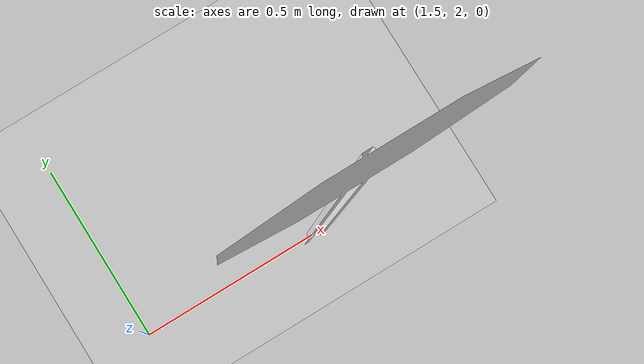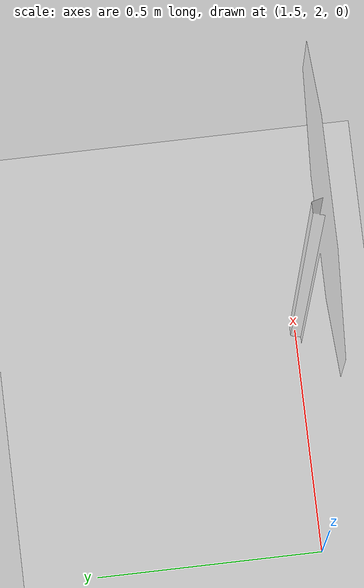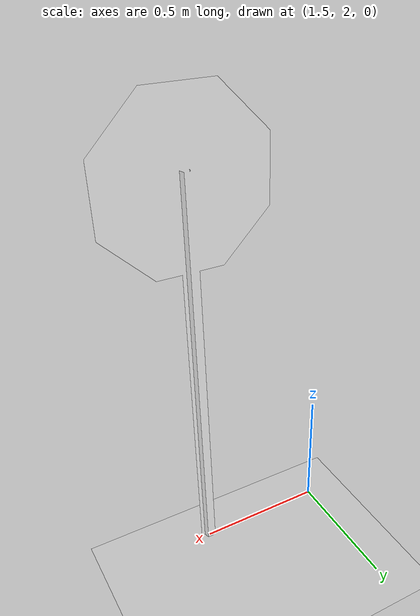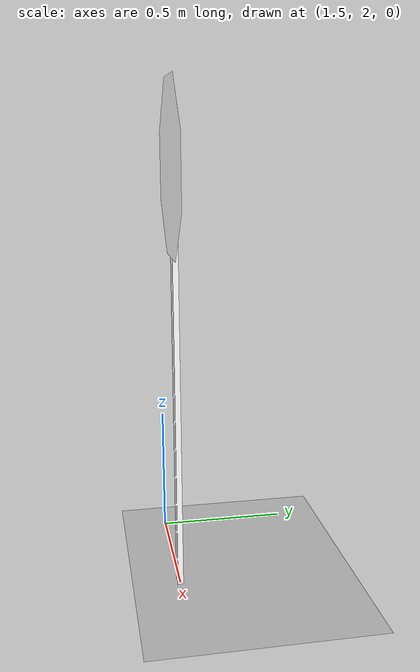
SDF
<?xml version="1.0" encoding="UTF-8"?>
<sdf version='1.5'>
  <world name='default'>
    <light name='sun' type='directional'>
      <cast_shadows>0</cast_shadows>
      <pose>0 0 10 0 -0 0</pose>
      <diffuse>0.8 0.8 0.8 1</diffuse>
      <specular>0.2 0.2 0.2 1</specular>
      <attenuation>
        <range>1000</range>
        <constant>0.9</constant>
        <linear>0.01</linear>
        <quadratic>0.001</quadratic>
      </attenuation>
      <direction>-0.5 0.1 -0.9</direction>
    </light>

    <model name='ground_plane'>
      <static>1</static>
      <link name='link'>
        <collision name='collision'>
          <geometry>
            <plane>
              <normal>0 0 1</normal>
              <size>100 100</size>
            </plane>
          </geometry>
          <surface>
            <friction>
              <ode>
                <mu>100000</mu>
                <mu2>100000</mu2>
              </ode>
            </friction>
            <contact>
              <ode/>
            </contact>
            <bounce/>
          </surface>
          <max_contacts>10</max_contacts>
        </collision>
        <visual name='visual'>
          <cast_shadows>0</cast_shadows>
          <geometry>
            <plane>
              <normal>0 0 1</normal>
              <size>100 100</size>
            </plane>
          </geometry>
          <material>
            <script>
              <uri>file://media/materials/scripts/gazebo.material</uri>
              <name>Gazebo/Grey</name>
            </script>
          </material>
        </visual>
        <self_collide>0</self_collide>
        <kinematic>0</kinematic>
        <gravity>1</gravity>
      </link>
    </model>

    <physics type='ode'>
      <real_time_update_rate>1000</real_time_update_rate>
      <ode>
        <solver>
          <type>quick</type>
          <iters>70</iters>
          <sor>1.3</sor>
          <use_dynamic_moi_rescaling>0</use_dynamic_moi_rescaling>
        </solver>
        <constraints>
          <cfm>0</cfm>
          <erp>0.2</erp>
          <contact_max_correcting_vel>100</contact_max_correcting_vel>
          <contact_surface_layer>0.001</contact_surface_layer>
        </constraints>
      </ode>
      <max_step_size>0.001</max_step_size>
      <real_time_factor>1</real_time_factor>
      <gravity>0 0 -9.8</gravity>
      <magnetic_field>5.5645e-06 2.28758e-05 -4.23884e-05</magnetic_field>
    </physics>

    <model name='Stop Sign'>
      <static>1</static>
      <link name='link'>

      <pose frame=''>2 2 0 0 -0 0</pose>
        <collision name='collision'>
          <geometry>
            <mesh>
              <uri>model://stop_sign/meshes/stop_sign.dae</uri>
              <scale>1 1 1</scale>
            </mesh>
          </geometry>
          <max_contacts>10</max_contacts>
          <surface>
            <contact>
              <ode/>
            </contact>
            <bounce/>
            <friction>
              <torsional>
                <ode/>
              </torsional>
              <ode/>
            </friction>
          </surface>
        </collision>
        <visual name='visual'>
          <geometry>
            <mesh>
              <uri>model://stop_sign/meshes/stop_sign.dae</uri>
              <scale>1 1 1</scale>
            </mesh>
          </geometry>
          <material>
            <script>
              <uri>model://stop_sign/materials/scripts</uri>
              <uri>model://stop_sign/materials/textures</uri>
              <name>StopSign/Diffuse</name>
            </script>
          </material>
        </visual>
        <self_collide>0</self_collide>
        <inertial>
          <inertia>
            <ixx>1</ixx>
            <ixy>0</ixy>
            <ixz>0</ixz>
            <iyy>1</iyy>
            <iyz>0</iyz>
            <izz>1</izz>
          </inertia>
          <mass>1</mass>
        </inertial>
        <kinematic>0</kinematic>
        <gravity>1</gravity>
      </link>
    </model>

  </world>
</sdf>
